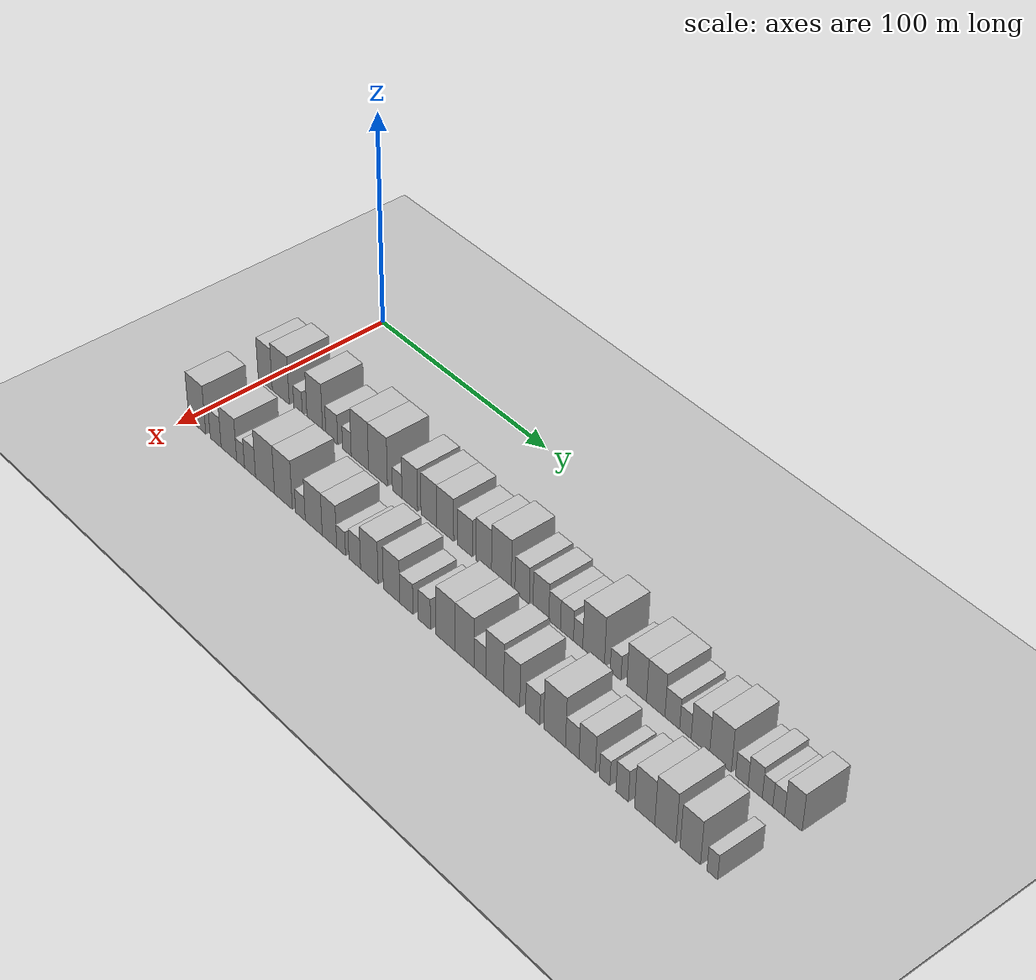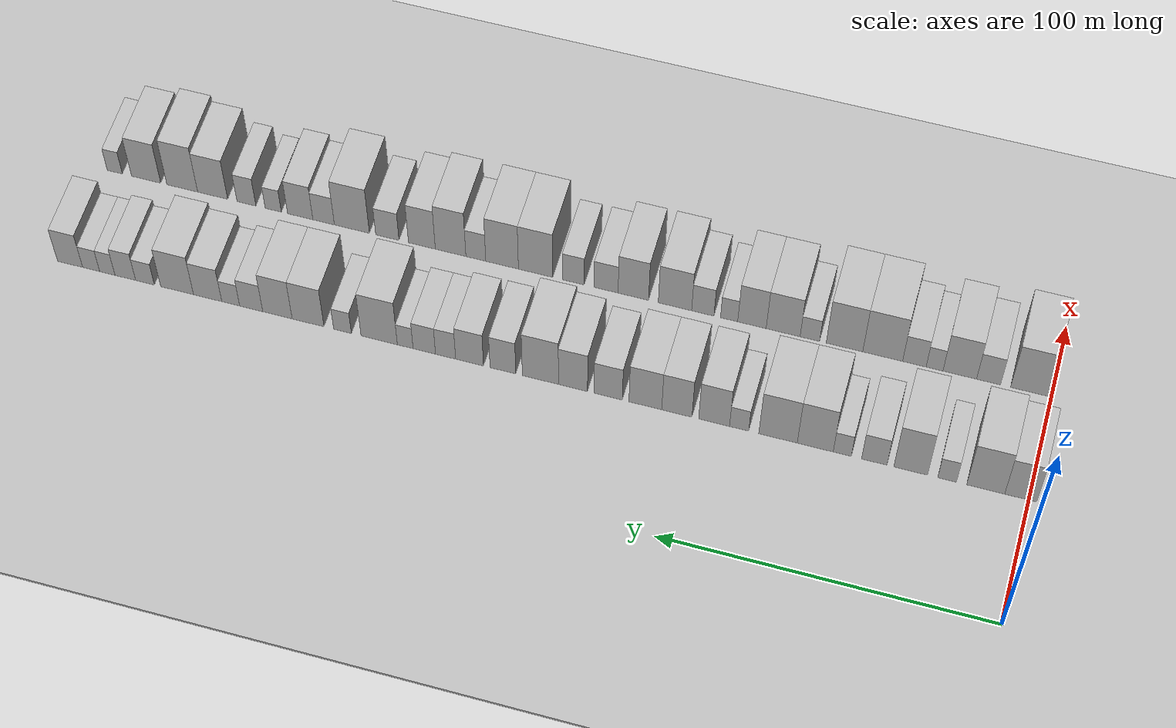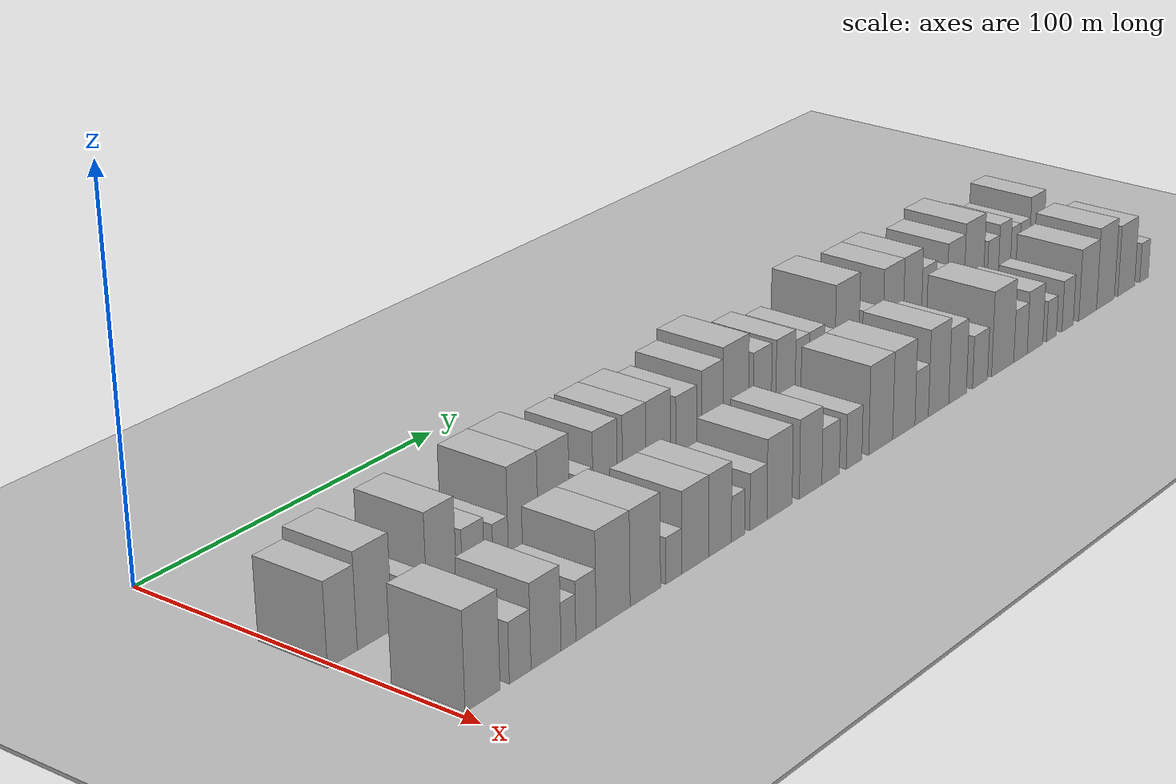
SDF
<sdf version="1.6">
 <world name="default">
  <include><name>ground_plane_1</name><uri>model://HANNAS_ground_plane</uri></include>
  <include>
   <name>ground_plane_2</name>
   <uri>model://HANNAS_ground_plane</uri>
   <pose>100 0 0  0 0 0</pose>
  </include>
  <model name="building_34">
   <static>1</static>
   <pose>50.0000 2.4501 0 0.000000 0.000000 0.000000</pose>
   <link name="link">
    <pose>0 0 10.50 0 0 0</pose>
    <collision name="collision"><geometry><box><size>20.0000 9.3061 21.0000</size></box></geometry></collision>
    <visual name="visual">
     <cast_shadows>0</cast_shadows>
     <geometry><box><size>20.0000 9.3061 21.0000</size></box></geometry>
     <material>
      <script>
       <uri>model://HANNAS_wall/materials/scripts</uri>
       <uri>model://HANNAS_wall/materials/textures</uri>
       <name>vrc/HANNAS_wall</name>
      </script>
     </material>
    </visual>
   </link>
  </model>
  <model name="building_35">
   <static>1</static>
   <pose>50.0000 12.6278 0 0.000000 0.000000 0.000000</pose>
   <link name="link">
    <pose>0 0 12.00 0 0 0</pose>
    <collision name="collision"><geometry><box><size>20.0000 11.0493 24.0000</size></box></geometry></collision>
    <visual name="visual">
     <cast_shadows>0</cast_shadows>
     <geometry><box><size>20.0000 11.0493 24.0000</size></box></geometry>
     <material>
      <script>
       <uri>model://HANNAS_wall/materials/scripts</uri>
       <uri>model://HANNAS_wall/materials/textures</uri>
       <name>vrc/HANNAS_wall</name>
      </script>
     </material>
    </visual>
   </link>
  </model>
  <model name="building_36">
   <static>1</static>
   <pose>50.0000 23.8809 0 0.000000 0.000000 0.000000</pose>
   <link name="link">
    <pose>0 0 6.00 0 0 0</pose>
    <collision name="collision"><geometry><box><size>20.0000 5.4568 12.0000</size></box></geometry></collision>
    <visual name="visual">
     <cast_shadows>0</cast_shadows>
     <geometry><box><size>20.0000 5.4568 12.0000</size></box></geometry>
     <material>
      <script>
       <uri>model://HANNAS_wall/materials/scripts</uri>
       <uri>model://HANNAS_wall/materials/textures</uri>
       <name>vrc/HANNAS_wall</name>
      </script>
     </material>
    </visual>
   </link>
  </model>
  <model name="building_37">
   <static>1</static>
   <pose>50.0000 34.5633 0 0.000000 0.000000 0.000000</pose>
   <link name="link">
    <pose>0 0 12.00 0 0 0</pose>
    <collision name="collision"><geometry><box><size>20.0000 9.9080 24.0000</size></box></geometry></collision>
    <visual name="visual">
     <cast_shadows>0</cast_shadows>
     <geometry><box><size>20.0000 9.9080 24.0000</size></box></geometry>
     <material>
      <script>
       <uri>model://HANNAS_wall/materials/scripts</uri>
       <uri>model://HANNAS_wall/materials/textures</uri>
       <name>vrc/HANNAS_wall</name>
      </script>
     </material>
    </visual>
   </link>
  </model>
  <model name="building_38">
   <static>1</static>
   <pose>50.0000 45.2656 0 0.000000 0.000000 0.000000</pose>
   <link name="link">
    <pose>0 0 7.50 0 0 0</pose>
    <collision name="collision"><geometry><box><size>20.0000 7.4966 15.0000</size></box></geometry></collision>
    <visual name="visual">
     <cast_shadows>0</cast_shadows>
     <geometry><box><size>20.0000 7.4966 15.0000</size></box></geometry>
     <material>
      <script>
       <uri>model://HANNAS_wall/materials/scripts</uri>
       <uri>model://HANNAS_wall/materials/textures</uri>
       <name>vrc/HANNAS_wall</name>
      </script>
     </material>
    </visual>
   </link>
  </model>
  <model name="building_39">
   <static>1</static>
   <pose>50.0000 54.6989 0 0.000000 0.000000 0.000000</pose>
   <link name="link">
    <pose>0 0 6.00 0 0 0</pose>
    <collision name="collision"><geometry><box><size>20.0000 5.3701 12.0000</size></box></geometry></collision>
    <visual name="visual">
     <cast_shadows>0</cast_shadows>
     <geometry><box><size>20.0000 5.3701 12.0000</size></box></geometry>
     <material>
      <script>
       <uri>model://HANNAS_wall/materials/scripts</uri>
       <uri>model://HANNAS_wall/materials/textures</uri>
       <name>vrc/HANNAS_wall</name>
      </script>
     </material>
    </visual>
   </link>
  </model>
  <model name="building_40">
   <static>1</static>
   <pose>50.0000 62.7088 0 0.000000 0.000000 0.000000</pose>
   <link name="link">
    <pose>0 0 12.00 0 0 0</pose>
    <collision name="collision"><geometry><box><size>20.0000 10.6496 24.0000</size></box></geometry></collision>
    <visual name="visual">
     <cast_shadows>0</cast_shadows>
     <geometry><box><size>20.0000 10.6496 24.0000</size></box></geometry>
     <material>
      <script>
       <uri>model://HANNAS_wall/materials/scripts</uri>
       <uri>model://HANNAS_wall/materials/textures</uri>
       <name>vrc/HANNAS_wall</name>
      </script>
     </material>
    </visual>
   </link>
  </model>
  <model name="building_41">
   <static>1</static>
   <pose>50.0000 73.7607 0 0.000000 0.000000 0.000000</pose>
   <link name="link">
    <pose>0 0 12.00 0 0 0</pose>
    <collision name="collision"><geometry><box><size>20.0000 11.4543 24.0000</size></box></geometry></collision>
    <visual name="visual">
     <cast_shadows>0</cast_shadows>
     <geometry><box><size>20.0000 11.4543 24.0000</size></box></geometry>
     <material>
      <script>
       <uri>model://HANNAS_wall/materials/scripts</uri>
       <uri>model://HANNAS_wall/materials/textures</uri>
       <name>vrc/HANNAS_wall</name>
      </script>
     </material>
    </visual>
   </link>
  </model>
  <model name="building_42">
   <static>1</static>
   <pose>50.0000 85.3550 0 0.000000 0.000000 0.000000</pose>
   <link name="link">
    <pose>0 0 6.00 0 0 0</pose>
    <collision name="collision"><geometry><box><size>20.0000 5.7342 12.0000</size></box></geometry></collision>
    <visual name="visual">
     <cast_shadows>0</cast_shadows>
     <geometry><box><size>20.0000 5.7342 12.0000</size></box></geometry>
     <material>
      <script>
       <uri>model://HANNAS_wall/materials/scripts</uri>
       <uri>model://HANNAS_wall/materials/textures</uri>
       <name>vrc/HANNAS_wall</name>
      </script>
     </material>
    </visual>
   </link>
  </model>
  <model name="building_43">
   <static>1</static>
   <pose>50.0000 92.8432 0 0.000000 0.000000 0.000000</pose>
   <link name="link">
    <pose>0 0 10.50 0 0 0</pose>
    <collision name="collision"><geometry><box><size>20.0000 9.2423 21.0000</size></box></geometry></collision>
    <visual name="visual">
     <cast_shadows>0</cast_shadows>
     <geometry><box><size>20.0000 9.2423 21.0000</size></box></geometry>
     <material>
      <script>
       <uri>model://HANNAS_wall/materials/scripts</uri>
       <uri>model://HANNAS_wall/materials/textures</uri>
       <name>vrc/HANNAS_wall</name>
      </script>
     </material>
    </visual>
   </link>
  </model>
  <model name="building_44">
   <static>1</static>
   <pose>50.0000 104.0225 0 0.000000 0.000000 0.000000</pose>
   <link name="link">
    <pose>0 0 10.50 0 0 0</pose>
    <collision name="collision"><geometry><box><size>20.0000 9.1162 21.0000</size></box></geometry></collision>
    <visual name="visual">
     <cast_shadows>0</cast_shadows>
     <geometry><box><size>20.0000 9.1162 21.0000</size></box></geometry>
     <material>
      <script>
       <uri>model://HANNAS_wall/materials/scripts</uri>
       <uri>model://HANNAS_wall/materials/textures</uri>
       <name>vrc/HANNAS_wall</name>
      </script>
     </material>
    </visual>
   </link>
  </model>
  <model name="building_45">
   <static>1</static>
   <pose>50.0000 113.5234 0 0.000000 0.000000 0.000000</pose>
   <link name="link">
    <pose>0 0 10.50 0 0 0</pose>
    <collision name="collision"><geometry><box><size>20.0000 9.8857 21.0000</size></box></geometry></collision>
    <visual name="visual">
     <cast_shadows>0</cast_shadows>
     <geometry><box><size>20.0000 9.8857 21.0000</size></box></geometry>
     <material>
      <script>
       <uri>model://HANNAS_wall/materials/scripts</uri>
       <uri>model://HANNAS_wall/materials/textures</uri>
       <name>vrc/HANNAS_wall</name>
      </script>
     </material>
    </visual>
   </link>
  </model>
  <model name="building_46">
   <static>1</static>
   <pose>50.0000 124.7438 0 0.000000 0.000000 0.000000</pose>
   <link name="link">
    <pose>0 0 9.00 0 0 0</pose>
    <collision name="collision"><geometry><box><size>20.0000 8.5551 18.0000</size></box></geometry></collision>
    <visual name="visual">
     <cast_shadows>0</cast_shadows>
     <geometry><box><size>20.0000 8.5551 18.0000</size></box></geometry>
     <material>
      <script>
       <uri>model://HANNAS_wall/materials/scripts</uri>
       <uri>model://HANNAS_wall/materials/textures</uri>
       <name>vrc/HANNAS_wall</name>
      </script>
     </material>
    </visual>
   </link>
  </model>
  <model name="building_47">
   <static>1</static>
   <pose>50.0000 135.4320 0 0.000000 0.000000 0.000000</pose>
   <link name="link">
    <pose>0 0 10.50 0 0 0</pose>
    <collision name="collision"><geometry><box><size>20.0000 8.8213 21.0000</size></box></geometry></collision>
    <visual name="visual">
     <cast_shadows>0</cast_shadows>
     <geometry><box><size>20.0000 8.8213 21.0000</size></box></geometry>
     <material>
      <script>
       <uri>model://HANNAS_wall/materials/scripts</uri>
       <uri>model://HANNAS_wall/materials/textures</uri>
       <name>vrc/HANNAS_wall</name>
      </script>
     </material>
    </visual>
   </link>
  </model>
  <model name="building_48">
   <static>1</static>
   <pose>50.0000 145.3478 0 0.000000 0.000000 0.000000</pose>
   <link name="link">
    <pose>0 0 12.00 0 0 0</pose>
    <collision name="collision"><geometry><box><size>20.0000 11.0102 24.0000</size></box></geometry></collision>
    <visual name="visual">
     <cast_shadows>0</cast_shadows>
     <geometry><box><size>20.0000 11.0102 24.0000</size></box></geometry>
     <material>
      <script>
       <uri>model://HANNAS_wall/materials/scripts</uri>
       <uri>model://HANNAS_wall/materials/textures</uri>
       <name>vrc/HANNAS_wall</name>
      </script>
     </material>
    </visual>
   </link>
  </model>
  <model name="building_49">
   <static>1</static>
   <pose>50.0000 156.7996 0 0.000000 0.000000 0.000000</pose>
   <link name="link">
    <pose>0 0 9.00 0 0 0</pose>
    <collision name="collision"><geometry><box><size>20.0000 7.8934 18.0000</size></box></geometry></collision>
    <visual name="visual">
     <cast_shadows>0</cast_shadows>
     <geometry><box><size>20.0000 7.8934 18.0000</size></box></geometry>
     <material>
      <script>
       <uri>model://HANNAS_wall/materials/scripts</uri>
       <uri>model://HANNAS_wall/materials/textures</uri>
       <name>vrc/HANNAS_wall</name>
      </script>
     </material>
    </visual>
   </link>
  </model>
  <model name="building_50">
   <static>1</static>
   <pose>50.0000 167.0324 0 0.000000 0.000000 0.000000</pose>
   <link name="link">
    <pose>0 0 9.00 0 0 0</pose>
    <collision name="collision"><geometry><box><size>20.0000 8.5721 18.0000</size></box></geometry></collision>
    <visual name="visual">
     <cast_shadows>0</cast_shadows>
     <geometry><box><size>20.0000 8.5721 18.0000</size></box></geometry>
     <material>
      <script>
       <uri>model://HANNAS_wall/materials/scripts</uri>
       <uri>model://HANNAS_wall/materials/textures</uri>
       <name>vrc/HANNAS_wall</name>
      </script>
     </material>
    </visual>
   </link>
  </model>
  <model name="building_51">
   <static>1</static>
   <pose>50.0000 174.4171 0 0.000000 0.000000 0.000000</pose>
   <link name="link">
    <pose>0 0 7.50 0 0 0</pose>
    <collision name="collision"><geometry><box><size>20.0000 6.1974 15.0000</size></box></geometry></collision>
    <visual name="visual">
     <cast_shadows>0</cast_shadows>
     <geometry><box><size>20.0000 6.1974 15.0000</size></box></geometry>
     <material>
      <script>
       <uri>model://HANNAS_wall/materials/scripts</uri>
       <uri>model://HANNAS_wall/materials/textures</uri>
       <name>vrc/HANNAS_wall</name>
      </script>
     </material>
    </visual>
   </link>
  </model>
  <model name="building_52">
   <static>1</static>
   <pose>50.0000 180.9856 0 0.000000 0.000000 0.000000</pose>
   <link name="link">
    <pose>0 0 7.50 0 0 0</pose>
    <collision name="collision"><geometry><box><size>20.0000 6.9395 15.0000</size></box></geometry></collision>
    <visual name="visual">
     <cast_shadows>0</cast_shadows>
     <geometry><box><size>20.0000 6.9395 15.0000</size></box></geometry>
     <material>
      <script>
       <uri>model://HANNAS_wall/materials/scripts</uri>
       <uri>model://HANNAS_wall/materials/textures</uri>
       <name>vrc/HANNAS_wall</name>
      </script>
     </material>
    </visual>
   </link>
  </model>
  <model name="building_53">
   <static>1</static>
   <pose>50.0000 186.8842 0 0.000000 0.000000 0.000000</pose>
   <link name="link">
    <pose>0 0 6.00 0 0 0</pose>
    <collision name="collision"><geometry><box><size>20.0000 4.8578 12.0000</size></box></geometry></collision>
    <visual name="visual">
     <cast_shadows>0</cast_shadows>
     <geometry><box><size>20.0000 4.8578 12.0000</size></box></geometry>
     <material>
      <script>
       <uri>model://HANNAS_wall/materials/scripts</uri>
       <uri>model://HANNAS_wall/materials/textures</uri>
       <name>vrc/HANNAS_wall</name>
      </script>
     </material>
    </visual>
   </link>
  </model>
  <model name="building_54">
   <static>1</static>
   <pose>50.0000 194.9506 0 0.000000 0.000000 0.000000</pose>
   <link name="link">
    <pose>0 0 12.00 0 0 0</pose>
    <collision name="collision"><geometry><box><size>20.0000 11.2751 24.0000</size></box></geometry></collision>
    <visual name="visual">
     <cast_shadows>0</cast_shadows>
     <geometry><box><size>20.0000 11.2751 24.0000</size></box></geometry>
     <material>
      <script>
       <uri>model://HANNAS_wall/materials/scripts</uri>
       <uri>model://HANNAS_wall/materials/textures</uri>
       <name>vrc/HANNAS_wall</name>
      </script>
     </material>
    </visual>
   </link>
  </model>
  <model name="building_55">
   <static>1</static>
   <pose>50.0000 206.3597 0 0.000000 0.000000 0.000000</pose>
   <link name="link">
    <pose>0 0 6.00 0 0 0</pose>
    <collision name="collision"><geometry><box><size>20.0000 5.5430 12.0000</size></box></geometry></collision>
    <visual name="visual">
     <cast_shadows>0</cast_shadows>
     <geometry><box><size>20.0000 5.5430 12.0000</size></box></geometry>
     <material>
      <script>
       <uri>model://HANNAS_wall/materials/scripts</uri>
       <uri>model://HANNAS_wall/materials/textures</uri>
       <name>vrc/HANNAS_wall</name>
      </script>
     </material>
    </visual>
   </link>
  </model>
  <model name="building_56">
   <static>1</static>
   <pose>50.0000 217.1143 0 0.000000 0.000000 0.000000</pose>
   <link name="link">
    <pose>0 0 10.50 0 0 0</pose>
    <collision name="collision"><geometry><box><size>20.0000 9.9661 21.0000</size></box></geometry></collision>
    <visual name="visual">
     <cast_shadows>0</cast_shadows>
     <geometry><box><size>20.0000 9.9661 21.0000</size></box></geometry>
     <material>
      <script>
       <uri>model://HANNAS_wall/materials/scripts</uri>
       <uri>model://HANNAS_wall/materials/textures</uri>
       <name>vrc/HANNAS_wall</name>
      </script>
     </material>
    </visual>
   </link>
  </model>
  <model name="building_57">
   <static>1</static>
   <pose>50.0000 226.7115 0 0.000000 0.000000 0.000000</pose>
   <link name="link">
    <pose>0 0 10.50 0 0 0</pose>
    <collision name="collision"><geometry><box><size>20.0000 9.2283 21.0000</size></box></geometry></collision>
    <visual name="visual">
     <cast_shadows>0</cast_shadows>
     <geometry><box><size>20.0000 9.2283 21.0000</size></box></geometry>
     <material>
      <script>
       <uri>model://HANNAS_wall/materials/scripts</uri>
       <uri>model://HANNAS_wall/materials/textures</uri>
       <name>vrc/HANNAS_wall</name>
      </script>
     </material>
    </visual>
   </link>
  </model>
  <model name="building_58">
   <static>1</static>
   <pose>50.0000 234.9569 0 0.000000 0.000000 0.000000</pose>
   <link name="link">
    <pose>0 0 7.50 0 0 0</pose>
    <collision name="collision"><geometry><box><size>20.0000 7.2625 15.0000</size></box></geometry></collision>
    <visual name="visual">
     <cast_shadows>0</cast_shadows>
     <geometry><box><size>20.0000 7.2625 15.0000</size></box></geometry>
     <material>
      <script>
       <uri>model://HANNAS_wall/materials/scripts</uri>
       <uri>model://HANNAS_wall/materials/textures</uri>
       <name>vrc/HANNAS_wall</name>
      </script>
     </material>
    </visual>
   </link>
  </model>
  <model name="building_59">
   <static>1</static>
   <pose>50.0000 241.4060 0 0.000000 0.000000 0.000000</pose>
   <link name="link">
    <pose>0 0 6.00 0 0 0</pose>
    <collision name="collision"><geometry><box><size>20.0000 5.6357 12.0000</size></box></geometry></collision>
    <visual name="visual">
     <cast_shadows>0</cast_shadows>
     <geometry><box><size>20.0000 5.6357 12.0000</size></box></geometry>
     <material>
      <script>
       <uri>model://HANNAS_wall/materials/scripts</uri>
       <uri>model://HANNAS_wall/materials/textures</uri>
       <name>vrc/HANNAS_wall</name>
      </script>
     </material>
    </visual>
   </link>
  </model>
  <model name="building_60">
   <static>1</static>
   <pose>50.0000 248.7005 0 0.000000 0.000000 0.000000</pose>
   <link name="link">
    <pose>0 0 9.00 0 0 0</pose>
    <collision name="collision"><geometry><box><size>20.0000 8.9532 18.0000</size></box></geometry></collision>
    <visual name="visual">
     <cast_shadows>0</cast_shadows>
     <geometry><box><size>20.0000 8.9532 18.0000</size></box></geometry>
     <material>
      <script>
       <uri>model://HANNAS_wall/materials/scripts</uri>
       <uri>model://HANNAS_wall/materials/textures</uri>
       <name>vrc/HANNAS_wall</name>
      </script>
     </material>
    </visual>
   </link>
  </model>
  <model name="building_61">
   <static>1</static>
   <pose>50.0000 258.3844 0 0.000000 0.000000 0.000000</pose>
   <link name="link">
    <pose>0 0 10.50 0 0 0</pose>
    <collision name="collision"><geometry><box><size>20.0000 10.4148 21.0000</size></box></geometry></collision>
    <visual name="visual">
     <cast_shadows>0</cast_shadows>
     <geometry><box><size>20.0000 10.4148 21.0000</size></box></geometry>
     <material>
      <script>
       <uri>model://HANNAS_wall/materials/scripts</uri>
       <uri>model://HANNAS_wall/materials/textures</uri>
       <name>vrc/HANNAS_wall</name>
      </script>
     </material>
    </visual>
   </link>
  </model>
  <model name="building_62">
   <static>1</static>
   <pose>50.0000 268.5849 0 0.000000 0.000000 0.000000</pose>
   <link name="link">
    <pose>0 0 6.00 0 0 0</pose>
    <collision name="collision"><geometry><box><size>20.0000 5.9861 12.0000</size></box></geometry></collision>
    <visual name="visual">
     <cast_shadows>0</cast_shadows>
     <geometry><box><size>20.0000 5.9861 12.0000</size></box></geometry>
     <material>
      <script>
       <uri>model://HANNAS_wall/materials/scripts</uri>
       <uri>model://HANNAS_wall/materials/textures</uri>
       <name>vrc/HANNAS_wall</name>
      </script>
     </material>
    </visual>
   </link>
  </model>
  <model name="building_63">
   <static>1</static>
   <pose>50.0000 274.8708 0 0.000000 0.000000 0.000000</pose>
   <link name="link">
    <pose>0 0 7.50 0 0 0</pose>
    <collision name="collision"><geometry><box><size>20.0000 6.5857 15.0000</size></box></geometry></collision>
    <visual name="visual">
     <cast_shadows>0</cast_shadows>
     <geometry><box><size>20.0000 6.5857 15.0000</size></box></geometry>
     <material>
      <script>
       <uri>model://HANNAS_wall/materials/scripts</uri>
       <uri>model://HANNAS_wall/materials/textures</uri>
       <name>vrc/HANNAS_wall</name>
      </script>
     </material>
    </visual>
   </link>
  </model>
  <model name="building_64">
   <static>1</static>
   <pose>50.0000 280.6113 0 0.000000 0.000000 0.000000</pose>
   <link name="link">
    <pose>0 0 6.00 0 0 0</pose>
    <collision name="collision"><geometry><box><size>20.0000 4.8953 12.0000</size></box></geometry></collision>
    <visual name="visual">
     <cast_shadows>0</cast_shadows>
     <geometry><box><size>20.0000 4.8953 12.0000</size></box></geometry>
     <material>
      <script>
       <uri>model://HANNAS_wall/materials/scripts</uri>
       <uri>model://HANNAS_wall/materials/textures</uri>
       <name>vrc/HANNAS_wall</name>
      </script>
     </material>
    </visual>
   </link>
  </model>
  <model name="building_65">
   <static>1</static>
   <pose>50.0000 285.7866 0 0.000000 0.000000 0.000000</pose>
   <link name="link">
    <pose>0 0 6.00 0 0 0</pose>
    <collision name="collision"><geometry><box><size>20.0000 5.4553 12.0000</size></box></geometry></collision>
    <visual name="visual">
     <cast_shadows>0</cast_shadows>
     <geometry><box><size>20.0000 5.4553 12.0000</size></box></geometry>
     <material>
      <script>
       <uri>model://HANNAS_wall/materials/scripts</uri>
       <uri>model://HANNAS_wall/materials/textures</uri>
       <name>vrc/HANNAS_wall</name>
      </script>
     </material>
    </visual>
   </link>
  </model>
  <model name="building_66">
   <static>1</static>
   <pose>50.0000 292.5362 0 0.000000 0.000000 0.000000</pose>
   <link name="link">
    <pose>0 0 9.00 0 0 0</pose>
    <collision name="collision"><geometry><box><size>20.0000 8.0438 18.0000</size></box></geometry></collision>
    <visual name="visual">
     <cast_shadows>0</cast_shadows>
     <geometry><box><size>20.0000 8.0438 18.0000</size></box></geometry>
     <material>
      <script>
       <uri>model://HANNAS_wall/materials/scripts</uri>
       <uri>model://HANNAS_wall/materials/textures</uri>
       <name>vrc/HANNAS_wall</name>
      </script>
     </material>
    </visual>
   </link>
  </model>
  <model name="building_99">
   <static>1</static>
   <pose>85.0000 6.5780 0 0.000000 0.000000 0.000000</pose>
   <link name="link">
    <pose>0 0 12.00 0 0 0</pose>
    <collision name="collision"><geometry><box><size>20.0000 11.1675 24.0000</size></box></geometry></collision>
    <visual name="visual">
     <cast_shadows>0</cast_shadows>
     <geometry><box><size>20.0000 11.1675 24.0000</size></box></geometry>
     <material>
      <script>
       <uri>model://HANNAS_wall/materials/scripts</uri>
       <uri>model://HANNAS_wall/materials/textures</uri>
       <name>vrc/HANNAS_wall</name>
      </script>
     </material>
    </visual>
   </link>
  </model>
  <model name="building_100">
   <static>1</static>
   <pose>85.0000 18.7271 0 0.000000 0.000000 0.000000</pose>
   <link name="link">
    <pose>0 0 7.50 0 0 0</pose>
    <collision name="collision"><geometry><box><size>20.0000 7.1307 15.0000</size></box></geometry></collision>
    <visual name="visual">
     <cast_shadows>0</cast_shadows>
     <geometry><box><size>20.0000 7.1307 15.0000</size></box></geometry>
     <material>
      <script>
       <uri>model://HANNAS_wall/materials/scripts</uri>
       <uri>model://HANNAS_wall/materials/textures</uri>
       <name>vrc/HANNAS_wall</name>
      </script>
     </material>
    </visual>
   </link>
  </model>
  <model name="building_101">
   <static>1</static>
   <pose>85.0000 27.3192 0 0.000000 0.000000 0.000000</pose>
   <link name="link">
    <pose>0 0 10.50 0 0 0</pose>
    <collision name="collision"><geometry><box><size>20.0000 10.0535 21.0000</size></box></geometry></collision>
    <visual name="visual">
     <cast_shadows>0</cast_shadows>
     <geometry><box><size>20.0000 10.0535 21.0000</size></box></geometry>
     <material>
      <script>
       <uri>model://HANNAS_wall/materials/scripts</uri>
       <uri>model://HANNAS_wall/materials/textures</uri>
       <name>vrc/HANNAS_wall</name>
      </script>
     </material>
    </visual>
   </link>
  </model>
  <model name="building_102">
   <static>1</static>
   <pose>85.0000 34.8695 0 0.000000 0.000000 0.000000</pose>
   <link name="link">
    <pose>0 0 6.00 0 0 0</pose>
    <collision name="collision"><geometry><box><size>20.0000 5.0471 12.0000</size></box></geometry></collision>
    <visual name="visual">
     <cast_shadows>0</cast_shadows>
     <geometry><box><size>20.0000 5.0471 12.0000</size></box></geometry>
     <material>
      <script>
       <uri>model://HANNAS_wall/materials/scripts</uri>
       <uri>model://HANNAS_wall/materials/textures</uri>
       <name>vrc/HANNAS_wall</name>
      </script>
     </material>
    </visual>
   </link>
  </model>
  <model name="building_103">
   <static>1</static>
   <pose>85.0000 40.9178 0 0.000000 0.000000 0.000000</pose>
   <link name="link">
    <pose>0 0 7.50 0 0 0</pose>
    <collision name="collision"><geometry><box><size>20.0000 7.0496 15.0000</size></box></geometry></collision>
    <visual name="visual">
     <cast_shadows>0</cast_shadows>
     <geometry><box><size>20.0000 7.0496 15.0000</size></box></geometry>
     <material>
      <script>
       <uri>model://HANNAS_wall/materials/scripts</uri>
       <uri>model://HANNAS_wall/materials/textures</uri>
       <name>vrc/HANNAS_wall</name>
      </script>
     </material>
    </visual>
   </link>
  </model>
  <model name="building_104">
   <static>1</static>
   <pose>85.0000 50.4417 0 0.000000 0.000000 0.000000</pose>
   <link name="link">
    <pose>0 0 12.00 0 0 0</pose>
    <collision name="collision"><geometry><box><size>20.0000 11.9984 24.0000</size></box></geometry></collision>
    <visual name="visual">
     <cast_shadows>0</cast_shadows>
     <geometry><box><size>20.0000 11.9984 24.0000</size></box></geometry>
     <material>
      <script>
       <uri>model://HANNAS_wall/materials/scripts</uri>
       <uri>model://HANNAS_wall/materials/textures</uri>
       <name>vrc/HANNAS_wall</name>
      </script>
     </material>
    </visual>
   </link>
  </model>
  <model name="building_105">
   <static>1</static>
   <pose>85.0000 61.9719 0 0.000000 0.000000 0.000000</pose>
   <link name="link">
    <pose>0 0 12.00 0 0 0</pose>
    <collision name="collision"><geometry><box><size>20.0000 11.0620 24.0000</size></box></geometry></collision>
    <visual name="visual">
     <cast_shadows>0</cast_shadows>
     <geometry><box><size>20.0000 11.0620 24.0000</size></box></geometry>
     <material>
      <script>
       <uri>model://HANNAS_wall/materials/scripts</uri>
       <uri>model://HANNAS_wall/materials/textures</uri>
       <name>vrc/HANNAS_wall</name>
      </script>
     </material>
    </visual>
   </link>
  </model>
  <model name="building_106">
   <static>1</static>
   <pose>85.0000 72.4606 0 0.000000 0.000000 0.000000</pose>
   <link name="link">
    <pose>0 0 6.00 0 0 0</pose>
    <collision name="collision"><geometry><box><size>20.0000 5.9154 12.0000</size></box></geometry></collision>
    <visual name="visual">
     <cast_shadows>0</cast_shadows>
     <geometry><box><size>20.0000 5.9154 12.0000</size></box></geometry>
     <material>
      <script>
       <uri>model://HANNAS_wall/materials/scripts</uri>
       <uri>model://HANNAS_wall/materials/textures</uri>
       <name>vrc/HANNAS_wall</name>
      </script>
     </material>
    </visual>
   </link>
  </model>
  <model name="building_107">
   <static>1</static>
   <pose>85.0000 80.5788 0 0.000000 0.000000 0.000000</pose>
   <link name="link">
    <pose>0 0 10.50 0 0 0</pose>
    <collision name="collision"><geometry><box><size>20.0000 10.3210 21.0000</size></box></geometry></collision>
    <visual name="visual">
     <cast_shadows>0</cast_shadows>
     <geometry><box><size>20.0000 10.3210 21.0000</size></box></geometry>
     <material>
      <script>
       <uri>model://HANNAS_wall/materials/scripts</uri>
       <uri>model://HANNAS_wall/materials/textures</uri>
       <name>vrc/HANNAS_wall</name>
      </script>
     </material>
    </visual>
   </link>
  </model>
  <model name="building_108">
   <static>1</static>
   <pose>85.0000 90.0885 0 0.000000 0.000000 0.000000</pose>
   <link name="link">
    <pose>0 0 10.50 0 0 0</pose>
    <collision name="collision"><geometry><box><size>20.0000 8.6983 21.0000</size></box></geometry></collision>
    <visual name="visual">
     <cast_shadows>0</cast_shadows>
     <geometry><box><size>20.0000 8.6983 21.0000</size></box></geometry>
     <material>
      <script>
       <uri>model://HANNAS_wall/materials/scripts</uri>
       <uri>model://HANNAS_wall/materials/textures</uri>
       <name>vrc/HANNAS_wall</name>
      </script>
     </material>
    </visual>
   </link>
  </model>
  <model name="building_109">
   <static>1</static>
   <pose>85.0000 97.0671 0 0.000000 0.000000 0.000000</pose>
   <link name="link">
    <pose>0 0 6.00 0 0 0</pose>
    <collision name="collision"><geometry><box><size>20.0000 5.2590 12.0000</size></box></geometry></collision>
    <visual name="visual">
     <cast_shadows>0</cast_shadows>
     <geometry><box><size>20.0000 5.2590 12.0000</size></box></geometry>
     <material>
      <script>
       <uri>model://HANNAS_wall/materials/scripts</uri>
       <uri>model://HANNAS_wall/materials/textures</uri>
       <name>vrc/HANNAS_wall</name>
      </script>
     </material>
    </visual>
   </link>
  </model>
  <model name="building_110">
   <static>1</static>
   <pose>85.0000 105.1294 0 0.000000 0.000000 0.000000</pose>
   <link name="link">
    <pose>0 0 7.50 0 0 0</pose>
    <collision name="collision"><geometry><box><size>20.0000 6.8656 15.0000</size></box></geometry></collision>
    <visual name="visual">
     <cast_shadows>0</cast_shadows>
     <geometry><box><size>20.0000 6.8656 15.0000</size></box></geometry>
     <material>
      <script>
       <uri>model://HANNAS_wall/materials/scripts</uri>
       <uri>model://HANNAS_wall/materials/textures</uri>
       <name>vrc/HANNAS_wall</name>
      </script>
     </material>
    </visual>
   </link>
  </model>
  <model name="building_111">
   <static>1</static>
   <pose>85.0000 113.6988 0 0.000000 0.000000 0.000000</pose>
   <link name="link">
    <pose>0 0 10.50 0 0 0</pose>
    <collision name="collision"><geometry><box><size>20.0000 10.2732 21.0000</size></box></geometry></collision>
    <visual name="visual">
     <cast_shadows>0</cast_shadows>
     <geometry><box><size>20.0000 10.2732 21.0000</size></box></geometry>
     <material>
      <script>
       <uri>model://HANNAS_wall/materials/scripts</uri>
       <uri>model://HANNAS_wall/materials/textures</uri>
       <name>vrc/HANNAS_wall</name>
      </script>
     </material>
    </visual>
   </link>
  </model>
  <model name="building_112">
   <static>1</static>
   <pose>85.0000 126.5559 0 0.000000 0.000000 0.000000</pose>
   <link name="link">
    <pose>0 0 10.50 0 0 0</pose>
    <collision name="collision"><geometry><box><size>20.0000 9.4411 21.0000</size></box></geometry></collision>
    <visual name="visual">
     <cast_shadows>0</cast_shadows>
     <geometry><box><size>20.0000 9.4411 21.0000</size></box></geometry>
     <material>
      <script>
       <uri>model://HANNAS_wall/materials/scripts</uri>
       <uri>model://HANNAS_wall/materials/textures</uri>
       <name>vrc/HANNAS_wall</name>
      </script>
     </material>
    </visual>
   </link>
  </model>
  <model name="building_113">
   <static>1</static>
   <pose>85.0000 135.0159 0 0.000000 0.000000 0.000000</pose>
   <link name="link">
    <pose>0 0 7.50 0 0 0</pose>
    <collision name="collision"><geometry><box><size>20.0000 7.4787 15.0000</size></box></geometry></collision>
    <visual name="visual">
     <cast_shadows>0</cast_shadows>
     <geometry><box><size>20.0000 7.4787 15.0000</size></box></geometry>
     <material>
      <script>
       <uri>model://HANNAS_wall/materials/scripts</uri>
       <uri>model://HANNAS_wall/materials/textures</uri>
       <name>vrc/HANNAS_wall</name>
      </script>
     </material>
    </visual>
   </link>
  </model>
  <model name="building_114">
   <static>1</static>
   <pose>85.0000 145.1619 0 0.000000 0.000000 0.000000</pose>
   <link name="link">
    <pose>0 0 7.50 0 0 0</pose>
    <collision name="collision"><geometry><box><size>20.0000 6.8134 15.0000</size></box></geometry></collision>
    <visual name="visual">
     <cast_shadows>0</cast_shadows>
     <geometry><box><size>20.0000 6.8134 15.0000</size></box></geometry>
     <material>
      <script>
       <uri>model://HANNAS_wall/materials/scripts</uri>
       <uri>model://HANNAS_wall/materials/textures</uri>
       <name>vrc/HANNAS_wall</name>
      </script>
     </material>
    </visual>
   </link>
  </model>
  <model name="building_115">
   <static>1</static>
   <pose>85.0000 156.9250 0 0.000000 0.000000 0.000000</pose>
   <link name="link">
    <pose>0 0 12.00 0 0 0</pose>
    <collision name="collision"><geometry><box><size>20.0000 10.7128 24.0000</size></box></geometry></collision>
    <visual name="visual">
     <cast_shadows>0</cast_shadows>
     <geometry><box><size>20.0000 10.7128 24.0000</size></box></geometry>
     <material>
      <script>
       <uri>model://HANNAS_wall/materials/scripts</uri>
       <uri>model://HANNAS_wall/materials/textures</uri>
       <name>vrc/HANNAS_wall</name>
      </script>
     </material>
    </visual>
   </link>
  </model>
  <model name="building_116">
   <static>1</static>
   <pose>85.0000 167.3992 0 0.000000 0.000000 0.000000</pose>
   <link name="link">
    <pose>0 0 12.00 0 0 0</pose>
    <collision name="collision"><geometry><box><size>20.0000 10.2355 24.0000</size></box></geometry></collision>
    <visual name="visual">
     <cast_shadows>0</cast_shadows>
     <geometry><box><size>20.0000 10.2355 24.0000</size></box></geometry>
     <material>
      <script>
       <uri>model://HANNAS_wall/materials/scripts</uri>
       <uri>model://HANNAS_wall/materials/textures</uri>
       <name>vrc/HANNAS_wall</name>
      </script>
     </material>
    </visual>
   </link>
  </model>
  <model name="building_117">
   <static>1</static>
   <pose>85.0000 175.6454 0 0.000000 0.000000 0.000000</pose>
   <link name="link">
    <pose>0 0 7.50 0 0 0</pose>
    <collision name="collision"><geometry><box><size>20.0000 6.2570 15.0000</size></box></geometry></collision>
    <visual name="visual">
     <cast_shadows>0</cast_shadows>
     <geometry><box><size>20.0000 6.2570 15.0000</size></box></geometry>
     <material>
      <script>
       <uri>model://HANNAS_wall/materials/scripts</uri>
       <uri>model://HANNAS_wall/materials/textures</uri>
       <name>vrc/HANNAS_wall</name>
      </script>
     </material>
    </visual>
   </link>
  </model>
  <model name="building_118">
   <static>1</static>
   <pose>85.0000 183.5972 0 0.000000 0.000000 0.000000</pose>
   <link name="link">
    <pose>0 0 12.00 0 0 0</pose>
    <collision name="collision"><geometry><box><size>20.0000 9.6465 24.0000</size></box></geometry></collision>
    <visual name="visual">
     <cast_shadows>0</cast_shadows>
     <geometry><box><size>20.0000 9.6465 24.0000</size></box></geometry>
     <material>
      <script>
       <uri>model://HANNAS_wall/materials/scripts</uri>
       <uri>model://HANNAS_wall/materials/textures</uri>
       <name>vrc/HANNAS_wall</name>
      </script>
     </material>
    </visual>
   </link>
  </model>
  <model name="building_119">
   <static>1</static>
   <pose>85.0000 192.6629 0 0.000000 0.000000 0.000000</pose>
   <link name="link">
    <pose>0 0 10.50 0 0 0</pose>
    <collision name="collision"><geometry><box><size>20.0000 8.4848 21.0000</size></box></geometry></collision>
    <visual name="visual">
     <cast_shadows>0</cast_shadows>
     <geometry><box><size>20.0000 8.4848 21.0000</size></box></geometry>
     <material>
      <script>
       <uri>model://HANNAS_wall/materials/scripts</uri>
       <uri>model://HANNAS_wall/materials/textures</uri>
       <name>vrc/HANNAS_wall</name>
      </script>
     </material>
    </visual>
   </link>
  </model>
  <model name="building_120">
   <static>1</static>
   <pose>85.0000 203.5992 0 0.000000 0.000000 0.000000</pose>
   <link name="link">
    <pose>0 0 7.50 0 0 0</pose>
    <collision name="collision"><geometry><box><size>20.0000 7.3879 15.0000</size></box></geometry></collision>
    <visual name="visual">
     <cast_shadows>0</cast_shadows>
     <geometry><box><size>20.0000 7.3879 15.0000</size></box></geometry>
     <material>
      <script>
       <uri>model://HANNAS_wall/materials/scripts</uri>
       <uri>model://HANNAS_wall/materials/textures</uri>
       <name>vrc/HANNAS_wall</name>
      </script>
     </material>
    </visual>
   </link>
  </model>
  <model name="building_121">
   <static>1</static>
   <pose>85.0000 214.8774 0 0.000000 0.000000 0.000000</pose>
   <link name="link">
    <pose>0 0 12.00 0 0 0</pose>
    <collision name="collision"><geometry><box><size>20.0000 11.1685 24.0000</size></box></geometry></collision>
    <visual name="visual">
     <cast_shadows>0</cast_shadows>
     <geometry><box><size>20.0000 11.1685 24.0000</size></box></geometry>
     <material>
      <script>
       <uri>model://HANNAS_wall/materials/scripts</uri>
       <uri>model://HANNAS_wall/materials/textures</uri>
       <name>vrc/HANNAS_wall</name>
      </script>
     </material>
    </visual>
   </link>
  </model>
  <model name="building_122">
   <static>1</static>
   <pose>85.0000 223.9036 0 0.000000 0.000000 0.000000</pose>
   <link name="link">
    <pose>0 0 7.50 0 0 0</pose>
    <collision name="collision"><geometry><box><size>20.0000 6.8840 15.0000</size></box></geometry></collision>
    <visual name="visual">
     <cast_shadows>0</cast_shadows>
     <geometry><box><size>20.0000 6.8840 15.0000</size></box></geometry>
     <material>
      <script>
       <uri>model://HANNAS_wall/materials/scripts</uri>
       <uri>model://HANNAS_wall/materials/textures</uri>
       <name>vrc/HANNAS_wall</name>
      </script>
     </material>
    </visual>
   </link>
  </model>
  <model name="building_123">
   <static>1</static>
   <pose>85.0000 231.3968 0 0.000000 0.000000 0.000000</pose>
   <link name="link">
    <pose>0 0 9.00 0 0 0</pose>
    <collision name="collision"><geometry><box><size>20.0000 8.1024 18.0000</size></box></geometry></collision>
    <visual name="visual">
     <cast_shadows>0</cast_shadows>
     <geometry><box><size>20.0000 8.1024 18.0000</size></box></geometry>
     <material>
      <script>
       <uri>model://HANNAS_wall/materials/scripts</uri>
       <uri>model://HANNAS_wall/materials/textures</uri>
       <name>vrc/HANNAS_wall</name>
      </script>
     </material>
    </visual>
   </link>
  </model>
  <model name="building_124">
   <static>1</static>
   <pose>85.0000 240.0409 0 0.000000 0.000000 0.000000</pose>
   <link name="link">
    <pose>0 0 6.00 0 0 0</pose>
    <collision name="collision"><geometry><box><size>20.0000 5.1857 12.0000</size></box></geometry></collision>
    <visual name="visual">
     <cast_shadows>0</cast_shadows>
     <geometry><box><size>20.0000 5.1857 12.0000</size></box></geometry>
     <material>
      <script>
       <uri>model://HANNAS_wall/materials/scripts</uri>
       <uri>model://HANNAS_wall/materials/textures</uri>
       <name>vrc/HANNAS_wall</name>
      </script>
     </material>
    </visual>
   </link>
  </model>
  <model name="building_125">
   <static>1</static>
   <pose>85.0000 248.6794 0 0.000000 0.000000 0.000000</pose>
   <link name="link">
    <pose>0 0 7.50 0 0 0</pose>
    <collision name="collision"><geometry><box><size>20.0000 6.0914 15.0000</size></box></geometry></collision>
    <visual name="visual">
     <cast_shadows>0</cast_shadows>
     <geometry><box><size>20.0000 6.0914 15.0000</size></box></geometry>
     <material>
      <script>
       <uri>model://HANNAS_wall/materials/scripts</uri>
       <uri>model://HANNAS_wall/materials/textures</uri>
       <name>vrc/HANNAS_wall</name>
      </script>
     </material>
    </visual>
   </link>
  </model>
  <model name="building_126">
   <static>1</static>
   <pose>85.0000 259.5897 0 0.000000 0.000000 0.000000</pose>
   <link name="link">
    <pose>0 0 10.50 0 0 0</pose>
    <collision name="collision"><geometry><box><size>20.0000 9.7291 21.0000</size></box></geometry></collision>
    <visual name="visual">
     <cast_shadows>0</cast_shadows>
     <geometry><box><size>20.0000 9.7291 21.0000</size></box></geometry>
     <material>
      <script>
       <uri>model://HANNAS_wall/materials/scripts</uri>
       <uri>model://HANNAS_wall/materials/textures</uri>
       <name>vrc/HANNAS_wall</name>
      </script>
     </material>
    </visual>
   </link>
  </model>
  <model name="building_127">
   <static>1</static>
   <pose>85.0000 269.4508 0 0.000000 0.000000 0.000000</pose>
   <link name="link">
    <pose>0 0 12.00 0 0 0</pose>
    <collision name="collision"><geometry><box><size>20.0000 9.9931 24.0000</size></box></geometry></collision>
    <visual name="visual">
     <cast_shadows>0</cast_shadows>
     <geometry><box><size>20.0000 9.9931 24.0000</size></box></geometry>
     <material>
      <script>
       <uri>model://HANNAS_wall/materials/scripts</uri>
       <uri>model://HANNAS_wall/materials/textures</uri>
       <name>vrc/HANNAS_wall</name>
      </script>
     </material>
    </visual>
   </link>
  </model>
  <model name="building_128">
   <static>1</static>
   <pose>85.0000 281.2116 0 0.000000 0.000000 0.000000</pose>
   <link name="link">
    <pose>0 0 10.50 0 0 0</pose>
    <collision name="collision"><geometry><box><size>20.0000 9.5285 21.0000</size></box></geometry></collision>
    <visual name="visual">
     <cast_shadows>0</cast_shadows>
     <geometry><box><size>20.0000 9.5285 21.0000</size></box></geometry>
     <material>
      <script>
       <uri>model://HANNAS_wall/materials/scripts</uri>
       <uri>model://HANNAS_wall/materials/textures</uri>
       <name>vrc/HANNAS_wall</name>
      </script>
     </material>
    </visual>
   </link>
  </model>
  <model name="building_129">
   <static>1</static>
   <pose>85.0000 291.4358 0 0.000000 0.000000 0.000000</pose>
   <link name="link">
    <pose>0 0 6.00 0 0 0</pose>
    <collision name="collision"><geometry><box><size>20.0000 4.9197 12.0000</size></box></geometry></collision>
    <visual name="visual">
     <cast_shadows>0</cast_shadows>
     <geometry><box><size>20.0000 4.9197 12.0000</size></box></geometry>
     <material>
      <script>
       <uri>model://HANNAS_wall/materials/scripts</uri>
       <uri>model://HANNAS_wall/materials/textures</uri>
       <name>vrc/HANNAS_wall</name>
      </script>
     </material>
    </visual>
   </link>
  </model>
 </world>
</sdf>
